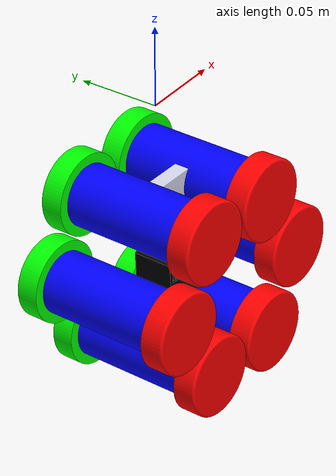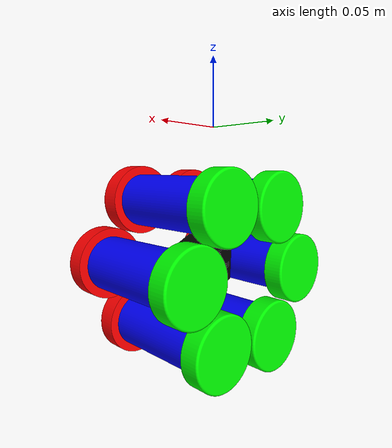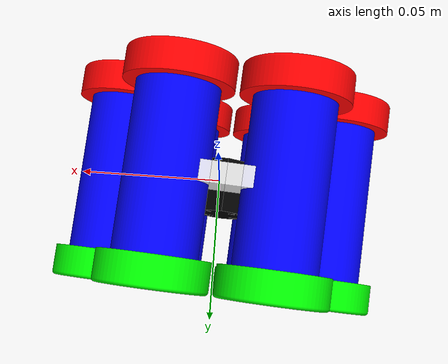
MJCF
<?xml version="1.0" ?>
<!-- Generated using onshape-to-robot -->
<!-- Onshape https://cad.onshape.com/documents/1211bac3cb73c606e0df4462/w/b4b802ed1facbeb12b844dd4/e/452889f0b3bd3a04c0a0f503 -->
<mujoco model="roller">
  <compiler angle="radian" meshdir="assets" autolimits="true"/>
  <default>
    <default class="roller">
      <joint frictionloss="0.1" armature="0.005"/>
      <default class="visual">
        <geom type="mesh" contype="0" conaffinity="0" group="2"/>
      </default>
      <default class="collision">
        <geom group="3"/>
      </default>
    </default>
  </default>
  <worldbody>
    <!-- Link control -->
    <body name="control" pos="0 0 -0.1" euler="0 0.5 1.5" childclass="roller">
      <freejoint name="control_freejoint"/>
      <inertial pos="-0.0127 -5.50107e-05 -5.66234e-05" mass="0.091974" fullinertia="0.000228369 0.00011488 0.00011488 -6.9492e-21 1.34665e-65 -9.85273e-37"/>

      <site group="3" name="control" pos="0 0 0" quat="1 0 0 0"/>
      <!-- Part control -->
      <geom type="mesh" class="visual" pos="-0.0127 -5.50107e-05 -5.66234e-05" quat="1 0 0 0" mesh="control" material="control_material"/>
      <geom type="mesh" class="collision" pos="-0.0127 -5.50107e-05 -5.66234e-05" quat="1 0 0 0" mesh="control" material="control_material"/>
      <!-- Part suspension_joint -->
      <geom type="mesh" class="visual" pos="-0.0127 -5.50107e-05 -5.66234e-05" quat="1 -0 1.11022e-16 -0" mesh="suspension_joint" material="suspension_joint_material"/>
      <geom type="mesh" class="collision" pos="-0.0127 -5.50107e-05 -5.66234e-05" quat="1 -0 1.11022e-16 -0" mesh="suspension_joint" material="suspension_joint_material"/>
      <!-- Link center -->
      <body name="center" pos="-0.0127 -5.50107e-05 0.0527434" quat="0.5 0.5 0.5 0.5">
        <!-- Joint from control to center -->
        <!-- Joint is "fixed", skipping it -->
        <inertial pos="1.04779e-18 6.93889e-18 2.50049e-50" mass="0.10645" fullinertia="6.13698e-05 6.13698e-05 1.97233e-05 0 -5.13333e-37 0"/>
        <!-- Part center -->
        <geom type="mesh" class="visual" pos="3.07642e-18 -0.0528 0" quat="0.5 -0.5 -0.5 -0.5" mesh="center" material="center_material"/>
        <geom type="mesh" class="collision" pos="3.07642e-18 -0.0528 0" quat="0.5 -0.5 -0.5 -0.5" mesh="center" material="center_material"/>
        <!-- Frame roller1 -->
        <site group="3" name="roller1" pos="6.54587e-18 0 0" quat="0.5 -0.5 -0.5 -0.5"/>
        <!-- Link l_wheel -->
        <body name="l_wheel" pos="7.45389e-19 0 -0.0381" quat="0.707107 0 1.11022e-16 0.707107">
          <!-- Joint from center to l_wheel -->
          <joint axis="0 0 1" name="L1" type="hinge"/>
          <inertial pos="6.6074e-18 6.93889e-18 -0.00723207" mass="0.0404519" fullinertia="7.21399e-06 7.21399e-06 1.30169e-05 0 0 6.0856e-54"/>
          <!-- Part l_wheel -->
          <geom type="mesh" class="visual" pos="6.93889e-18 -0.0528 0.0381" quat="0.5 -0.5 -0.5 -0.5" mesh="l_wheel" material="l_wheel_material"/>
          <geom type="mesh" class="collision" pos="6.93889e-18 -0.0528 0.0381" quat="0.5 -0.5 -0.5 -0.5" mesh="l_wheel" material="l_wheel_material"/>
        </body>
        <!-- Link r_wheel -->
        <body name="r_wheel" pos="1.34848e-18 0 0.0381" quat="1 -0 -0 0">
          <!-- Joint from center to r_wheel -->
          <joint axis="0 0 1" name="R1" type="hinge"/>
          <inertial pos="-6.93889e-18 -5.17685e-18 0.00723207" mass="0.0404519" fullinertia="7.21399e-06 7.21399e-06 1.30169e-05 7.47578e-38 3.55324e-22 3.55324e-22"/>
          <!-- Part r_wheel -->
          <geom type="mesh" class="visual" pos="0.0528 -1.38778e-17 -0.0381" quat="0.707107 -6.49467e-17 -0.707107 5.48114e-17" mesh="r_wheel" material="r_wheel_material"/>
          <geom type="mesh" class="collision" pos="0.0528 -1.38778e-17 -0.0381" quat="0.707107 -6.49467e-17 -0.707107 5.48114e-17" mesh="r_wheel" material="r_wheel_material"/>
        </body>
      </body>
      <!-- Link center_2 -->
      <body name="center_2" pos="-0.0127 0.0456711 0.0263434" quat="0.5 0.5 0.5 0.5">
        <!-- Joint from control to center_2 -->
        <!-- Joint is "fixed", skipping it -->
        <inertial pos="6.93889e-18 3.46945e-18 3.84346e-34" mass="0.10645" fullinertia="6.13698e-05 6.13698e-05 1.97233e-05 0 1.4377e-37 2.23364e-37"/>
        <!-- Part center_2 -->
        <geom type="mesh" class="visual" pos="-0.0457261 -0.0264 0" quat="0.183013 -0.683013 -0.183013 -0.683013" mesh="center" material="center_material"/>
        <geom type="mesh" class="collision" pos="-0.0457261 -0.0264 0" quat="0.183013 -0.683013 -0.183013 -0.683013" mesh="center" material="center_material"/>
        <!-- Frame roller6 -->
        <site group="3" name="roller6" pos="0 -6.93889e-18 0" quat="0.183013 -0.683013 -0.183013 -0.683013"/>
        <!-- Link l_wheel_2 -->
        <body name="l_wheel_2" pos="6.93889e-18 6.93889e-18 -0.0381" quat="0.707107 0 1.11022e-16 0.707107">
          <!-- Joint from center_2 to l_wheel_2 -->
          <joint axis="0 0 1" name="L2" type="hinge"/>
          <inertial pos="-3.31489e-19 6.93889e-18 -0.00723207" mass="0.0404519" fullinertia="7.21399e-06 7.21399e-06 1.30169e-05 0 0 6.0856e-54"/>
          <!-- Part l_wheel_2 -->
          <geom type="mesh" class="visual" pos="0 -0.0528 0.0381" quat="0.5 -0.5 -0.5 -0.5" mesh="l_wheel" material="l_wheel_material"/>
          <geom type="mesh" class="collision" pos="0 -0.0528 0.0381" quat="0.5 -0.5 -0.5 -0.5" mesh="l_wheel" material="l_wheel_material"/>
        </body>
        <!-- Link r_wheel_2 -->
        <body name="r_wheel_2" pos="-6.93889e-18 -3.46945e-18 0.0381" quat="0.866025 0 -2.22045e-16 -0.5">
          <!-- Joint from center_2 to r_wheel_2 -->
          <joint axis="0 0 1" name="R2" type="hinge"/>
          <inertial pos="1.04083e-17 6.93889e-18 0.00723207" mass="0.0404519" fullinertia="7.21399e-06 7.21399e-06 1.30169e-05 -4.88457e-22 -1.30058e-22 4.85382e-22"/>
          <!-- Part r_wheel_2 -->
          <geom type="mesh" class="visual" pos="0.0264 0.0457261 -0.0381" quat="0.612372 0.353553 -0.612372 0.353553" mesh="r_wheel" material="r_wheel_material"/>
          <geom type="mesh" class="collision" pos="0.0264 0.0457261 -0.0381" quat="0.612372 0.353553 -0.612372 0.353553" mesh="r_wheel" material="r_wheel_material"/>
        </body>
      </body>
      <!-- Link center_3 -->
      <body name="center_3" pos="-0.0127 0.0456711 -0.0264566" quat="0.183013 0.683013 -0.183013 -0.683013">
        <!-- Joint from control to center_3 -->
        <!-- Joint is "fixed", skipping it -->
        <inertial pos="-1.86454e-18 -6.93889e-18 1.46432e-33" mass="0.10645" fullinertia="6.13698e-05 6.13698e-05 1.97233e-05 -3.40671e-21 3.09986e-37 -1.51966e-36"/>
        <!-- Part center_3 -->
        <geom type="mesh" class="visual" pos="-2.71051e-18 0.0528 0" quat="0.5 0.5 0.5 -0.5" mesh="center" material="center_material"/>
        <geom type="mesh" class="collision" pos="-2.71051e-18 0.0528 0" quat="0.5 0.5 0.5 -0.5" mesh="center" material="center_material"/>
        <!-- Frame roller5 -->
        <site group="3" name="roller5" pos="-6.49166e-18 1.66533e-16 5.20417e-18" quat="0.5 0.5 0.5 -0.5"/>
        <!-- Link l_wheel_3 -->
        <body name="l_wheel_3" pos="-9.02598e-18 1.66533e-16 0.0381" quat="7.48244e-17 -0.258819 -0.965926 2.14577e-16">
          <!-- Joint from center_3 to l_wheel_3 -->
          <joint axis="0 0 1" name="L3" type="hinge"/>
          <inertial pos="3.13796e-18 1.38778e-17 -0.00723207" mass="0.0404519" fullinertia="7.21399e-06 7.21399e-06 1.30169e-05 0 0 -7.75692e-54"/>
          <!-- Part l_wheel_3 -->
          <geom type="mesh" class="visual" pos="3.46945e-18 -0.0528 0.0381" quat="0.5 -0.5 -0.5 -0.5" mesh="l_wheel" material="l_wheel_material"/>
          <geom type="mesh" class="collision" pos="3.46945e-18 -0.0528 0.0381" quat="0.5 -0.5 -0.5 -0.5" mesh="l_wheel" material="l_wheel_material"/>
        </body>
        <!-- Link r_wheel_3 -->
        <body name="r_wheel_3" pos="-2.15485e-18 -6.93889e-18 -0.0381" quat="0 1 0 0">
          <!-- Joint from center_3 to r_wheel_3 -->
          <joint axis="0 0 1" name="R3" type="hinge"/>
          <inertial pos="3.46945e-18 -1.66533e-16 0.00723207" mass="0.0404519" fullinertia="7.21399e-06 7.21399e-06 1.30169e-05 -2.23552e-22 -3.88941e-21 -1.83526e-21"/>
          <!-- Part r_wheel_3 -->
          <geom type="mesh" class="visual" pos="-0.0264 0.0457261 -0.0381" quat="0.353553 0.612372 -0.353553 0.612372" mesh="r_wheel" material="r_wheel_material"/>
          <geom type="mesh" class="collision" pos="-0.0264 0.0457261 -0.0381" quat="0.353553 0.612372 -0.353553 0.612372" mesh="r_wheel" material="r_wheel_material"/>
        </body>
      </body>
      <!-- Link center_4 -->
      <body name="center_4" pos="-0.0127 -5.50107e-05 -0.0528566" quat="0.5 0.5 -0.5 -0.5">
        <!-- Joint from control to center_4 -->
        <!-- Joint is "fixed", skipping it -->
        <inertial pos="-2.93913e-19 -6.93889e-18 2.24821e-99" mass="0.10645" fullinertia="6.13698e-05 6.13698e-05 1.97233e-05 0 -8.98706e-86 0"/>
        <!-- Part center_4 -->
        <geom type="mesh" class="visual" pos="1.73472e-18 0.0528 0" quat="0.5 0.5 0.5 -0.5" mesh="center" material="center_material"/>
        <geom type="mesh" class="collision" pos="1.73472e-18 0.0528 0" quat="0.5 0.5 0.5 -0.5" mesh="center" material="center_material"/>
        <!-- Frame roller4 -->
        <site group="3" name="roller4" pos="0 0 0" quat="0.5 0.5 0.5 -0.5"/>
        <!-- Link l_wheel_4 -->
        <body name="l_wheel_4" pos="4.0251e-18 0 0.0381" quat="4.32978e-17 -0.707107 -0.707107 -4.35788e-33">
          <!-- Joint from center_4 to l_wheel_4 -->
          <joint axis="0 0 1" name="L4" type="hinge"/>
          <inertial pos="6.6074e-18 6.93889e-18 -0.00723207" mass="0.0404519" fullinertia="7.21399e-06 7.21399e-06 1.30169e-05 0 0 6.0856e-54"/>
          <!-- Part l_wheel_4 -->
          <geom type="mesh" class="visual" pos="6.93889e-18 -0.0528 0.0381" quat="0.5 -0.5 -0.5 -0.5" mesh="l_wheel" material="l_wheel_material"/>
          <geom type="mesh" class="collision" pos="6.93889e-18 -0.0528 0.0381" quat="0.5 -0.5 -0.5 -0.5" mesh="l_wheel" material="l_wheel_material"/>
        </body>
        <!-- Link r_wheel_4 -->
        <body name="r_wheel_4" pos="-6.77626e-21 0 -0.0381" quat="0 1 0 0">
          <!-- Joint from center_4 to r_wheel_4 -->
          <joint axis="0 0 1" name="R4" type="hinge"/>
          <inertial pos="-7.80626e-18 0 0.00723207" mass="0.0404519" fullinertia="7.21399e-06 7.21399e-06 1.30169e-05 1.917e-22 -3.55324e-22 -3.55324e-22"/>
          <!-- Part r_wheel_4 -->
          <geom type="mesh" class="visual" pos="0.005362 -0.052527 -0.0381" quat="0.524774 -0.473932 -0.524774 -0.473932" mesh="r_wheel" material="r_wheel_material"/>
          <geom type="mesh" class="collision" pos="0.005362 -0.052527 -0.0381" quat="0.524774 -0.473932 -0.524774 -0.473932" mesh="r_wheel" material="r_wheel_material"/>
        </body>
      </body>
      <!-- Link center_5 -->
      <body name="center_5" pos="-0.0127 -0.0457812 -0.0264566" quat="0.683013 0.183013 -0.683013 -0.183013">
        <!-- Joint from control to center_5 -->
        <!-- Joint is "fixed", skipping it -->
        <inertial pos="-1.45222e-18 0 -3.25405e-34" mass="0.10645" fullinertia="6.13698e-05 6.13698e-05 1.97233e-05 1.82565e-21 1.21009e-36 -1.07996e-37"/>
        <!-- Part center_5 -->
        <geom type="mesh" class="visual" pos="4.29276e-18 0.0528 0" quat="0.5 0.5 0.5 -0.5" mesh="center" material="center_material"/>
        <geom type="mesh" class="collision" pos="4.29276e-18 0.0528 0" quat="0.5 0.5 0.5 -0.5" mesh="center" material="center_material"/>
        <!-- Frame roller3 -->
        <site group="3" name="roller3" pos="2.968e-18 -6.93889e-18 1.21431e-17" quat="0.5 0.5 0.5 -0.5"/>
        <!-- Link l_wheel_5 -->
        <body name="l_wheel_5" pos="-3.72694e-20 -1.38778e-17 0.0381" quat="3.69812e-17 -0.965926 -0.258819 9.01064e-18">
          <!-- Joint from center_5 to l_wheel_5 -->
          <joint axis="0 0 1" name="L5" type="hinge"/>
          <inertial pos="6.6074e-18 6.93889e-18 -0.00723207" mass="0.0404519" fullinertia="7.21399e-06 7.21399e-06 1.30169e-05 3.13942e-38 5.64136e-38 5.30607e-54"/>
          <!-- Part l_wheel_5 -->
          <geom type="mesh" class="visual" pos="6.93889e-18 -0.0528 0.0381" quat="0.5 -0.5 -0.5 -0.5" mesh="l_wheel" material="l_wheel_material"/>
          <geom type="mesh" class="collision" pos="6.93889e-18 -0.0528 0.0381" quat="0.5 -0.5 -0.5 -0.5" mesh="l_wheel" material="l_wheel_material"/>
        </body>
        <!-- Link r_wheel_5 -->
        <body name="r_wheel_5" pos="-5.01444e-19 6.93889e-18 -0.0381" quat="0 1 0 0">
          <!-- Joint from center_5 to r_wheel_5 -->
          <joint axis="0 0 1" name="R5" type="hinge"/>
          <inertial pos="-6.93889e-18 6.93889e-18 0.00723207" mass="0.0404519" fullinertia="7.21399e-06 7.21399e-06 1.30169e-05 6.56174e-22 -1.14344e-21 -4.93722e-21"/>
          <!-- Part r_wheel_5 -->
          <geom type="mesh" class="visual" pos="-0.0264 -0.0457261 -0.0381" quat="0.353553 -0.612372 -0.353553 -0.612372" mesh="r_wheel" material="r_wheel_material"/>
          <geom type="mesh" class="collision" pos="-0.0264 -0.0457261 -0.0381" quat="0.353553 -0.612372 -0.353553 -0.612372" mesh="r_wheel" material="r_wheel_material"/>
        </body>
      </body>
      <!-- Link center_6 -->
      <body name="center_6" pos="-0.0127 -0.0457812 0.0263434" quat="0.683013 -0.183013 -0.683013 0.183013">
        <!-- Joint from control to center_6 -->
        <!-- Joint is "fixed", skipping it -->
        <inertial pos="-1.76853e-18 -6.93889e-18 1.22027e-34" mass="0.10645" fullinertia="6.13698e-05 6.13698e-05 1.97233e-05 -4.77595e-21 -1.03432e-36 3.44383e-37"/>
        <!-- Part center_6 -->
        <geom type="mesh" class="visual" pos="-3.84892e-18 0.0528 0" quat="0.5 0.5 0.5 -0.5" mesh="center" material="center_material"/>
        <geom type="mesh" class="collision" pos="-3.84892e-18 0.0528 0" quat="0.5 0.5 0.5 -0.5" mesh="center" material="center_material"/>
        <!-- Frame roller2 -->
        <site group="3" name="roller2" pos="-1.0327e-17 -2.77556e-17 6.93889e-18" quat="0.5 0.5 0.5 -0.5"/>
        <!-- Link l_wheel_6 -->
        <body name="l_wheel_6" pos="-1.24006e-17 -3.46945e-17 0.0381" quat="7.97124e-17 -0.965926 0.258819 -1.29114e-16">
          <!-- Joint from center_6 to l_wheel_6 -->
          <joint axis="0 0 1" name="L6" type="hinge"/>
          <inertial pos="3.13796e-18 0 -0.00723207" mass="0.0404519" fullinertia="7.21399e-06 7.21399e-06 1.30169e-05 0 0 -1.24682e-37"/>
          <!-- Part l_wheel_6 -->
          <geom type="mesh" class="visual" pos="3.46945e-18 -0.0528 0.0381" quat="0.5 -0.5 -0.5 -0.5" mesh="l_wheel" material="l_wheel_material"/>
          <geom type="mesh" class="collision" pos="3.46945e-18 -0.0528 0.0381" quat="0.5 -0.5 -0.5 -0.5" mesh="l_wheel" material="l_wheel_material"/>
        </body>
        <!-- Link r_wheel_6 -->
        <body name="r_wheel_6" pos="8.13152e-20 0 -0.0381" quat="0 1 0 0">
          <!-- Joint from center_6 to r_wheel_6 -->
          <joint axis="0 0 1" name="R6" type="hinge"/>
          <inertial pos="-1.73472e-17 4.16334e-17 0.00723207" mass="0.0404519" fullinertia="7.21399e-06 7.21399e-06 1.30169e-05 -1.87552e-21 -1.81995e-21 -2.85461e-21"/>
          <!-- Part r_wheel_6 -->
          <geom type="mesh" class="visual" pos="0.0264 -0.0457261 -0.0381" quat="0.612372 -0.353553 -0.612372 -0.353553" mesh="r_wheel" material="r_wheel_material"/>
          <geom type="mesh" class="collision" pos="0.0264 -0.0457261 -0.0381" quat="0.612372 -0.353553 -0.612372 -0.353553" mesh="r_wheel" material="r_wheel_material"/>
        </body>
      </body>
    </body>
  </worldbody>
  <asset>
    <mesh file="center.stl"/>
    <mesh file="control.stl"/>
    <mesh file="r_wheel.stl"/>
    <mesh file="l_wheel.stl"/>
    <mesh file="suspension_joint.stl"/>
    <material name="control_material" rgba="0 0 0 1"/>
    <material name="suspension_joint_material" rgba="1 1 1 0.898039"/>
    <material name="center_material" rgba="0 0 1 1"/>
    <material name="l_wheel_material" rgba="1 0 0 1"/>
    <material name="r_wheel_material" rgba="0 1 0 1"/>
  </asset>
   <actuator>
<velocity class="roller" name="L1" joint="L1" kv="1" ctrllimited="true" ctrlrange="-250 250" forcerange="-0.28 0.28"/>
<velocity class="roller" name="R1" joint="R1" kv="1" ctrllimited="true" ctrlrange="-250 250" forcerange="-0.28 0.28"/>
<velocity class="roller" name="L2" joint="L2" kv="1" ctrllimited="true" ctrlrange="-250 250" forcerange="-0.28 0.28"/>
<velocity class="roller" name="R2" joint="R2" kv="1" ctrllimited="true" ctrlrange="-250 250" forcerange="-0.28 0.28"/>
<velocity class="roller" name="L3" joint="L3" kv="1" ctrllimited="true" ctrlrange="-250 250" forcerange="-0.28 0.28"/>
<velocity class="roller" name="R3" joint="R3" kv="1" ctrllimited="true" ctrlrange="-250 250" forcerange="-0.28 0.28"/>
<velocity class="roller" name="L4" joint="L4" kv="1" ctrllimited="true" ctrlrange="-250 250" forcerange="-0.28 0.28"/>
<velocity class="roller" name="R4" joint="R4" kv="1" ctrllimited="true" ctrlrange="-250 250" forcerange="-0.28 0.28"/>
<velocity class="roller" name="L5" joint="L5" kv="1" ctrllimited="true" ctrlrange="-250 250" forcerange="-0.28 0.28"/>
<velocity class="roller" name="R5" joint="R5" kv="1" ctrllimited="true" ctrlrange="-250 250" forcerange="-0.28 0.28"/>
<velocity class="roller" name="L6" joint="L6" kv="1" ctrllimited="true" ctrlrange="-250 250" forcerange="-0.28 0.28"/>
<velocity class="roller" name="R6" joint="R6" kv="1" ctrllimited="true" ctrlrange="-250 250" forcerange="-0.28 0.28"/>
    </actuator>

  <sensor>
    <accelerometer name="roller1_accel" site="roller1"/>
    <accelerometer name="roller2_accel" site="roller2"/>
    <accelerometer name="roller3_accel" site="roller3"/>
    <accelerometer name="roller4_accel" site="roller4"/>
    <accelerometer name="roller5_accel" site="roller5"/>
    <accelerometer name="roller6_accel" site="roller6"/>

    <velocimeter name="roller1_gyro" site="roller1"/>
    <velocimeter name="roller2_gyro" site="roller2"/>
    <velocimeter name="roller3_gyro" site="roller3"/>
    <velocimeter name="roller4_gyro" site="roller4"/>
    <velocimeter name="roller5_gyro" site="roller5"/>
    <velocimeter name="roller6_gyro" site="roller6"/>

    <jointvel name="L1_w" joint="L1"/>
    <jointvel name="R1_w" joint="R1"/>
    <jointvel name="L2_w" joint="L2"/>
    <jointvel name="R2_w" joint="R2"/>
    <jointvel name="L3_w" joint="L3"/>
    <jointvel name="R3_w" joint="R3"/>
    <jointvel name="L4_w" joint="L4"/>
    <jointvel name="R4_w" joint="R4"/>
    <jointvel name="L5_w" joint="L5"/>
    <jointvel name="R5_w" joint="R5"/>
    <jointvel name="L6_w" joint="L6"/>
    <jointvel name="R6_w" joint="R6"/>

    <velocimeter name="total_vel" site="control"/>
    <gyro name="total_ang" site="control"/>
    <accelerometer name="total_grav" site="control"/>
  </sensor> </mujoco>
